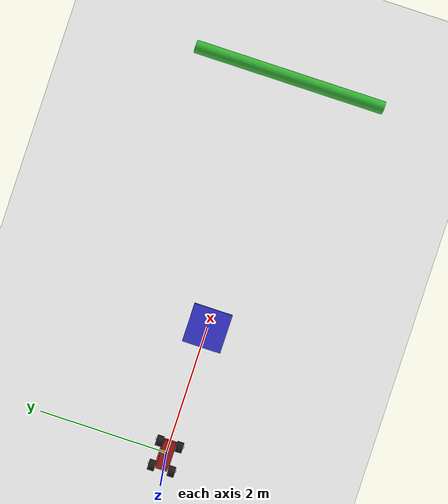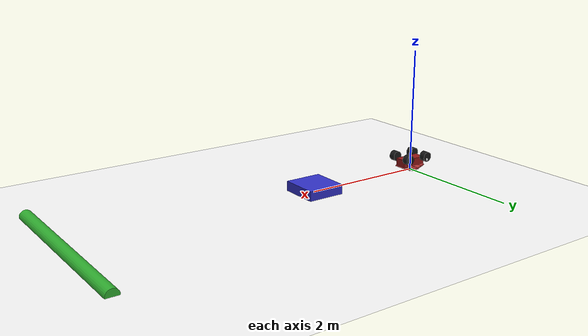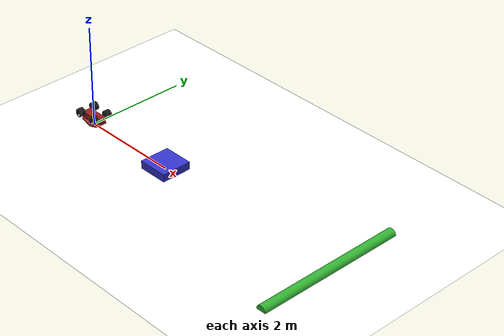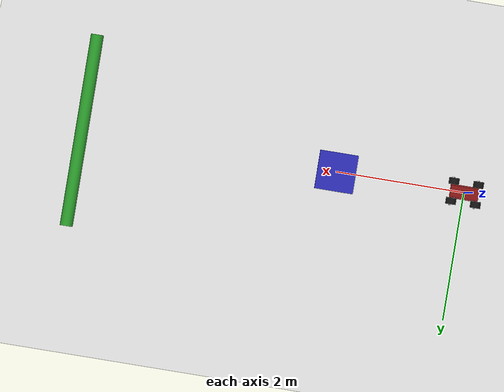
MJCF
<mujoco model="monster_truck_flip">
  <option gravity="0 0 -9.81" integrator="RK4" timestep="0.001"/>
  <compiler angle="radian"/>

  <default>
    <geom contype="1" conaffinity="1"
          friction="1.0 0.005 0.0002"
          solref="0.015 1"
          solimp="0.95 0.99 0.002"
          density="1000"/>
    <joint damping="0.02"/>
  </default>

  <visual>
    <quality shadowsize="2048"/>
    <map znear="0.01" zfar="20"/>
  </visual>

  <worldbody>
    <light name="sun" pos="0 0 10" dir="0 0 -1" diffuse="1 1 1"/>
    <geom name="ground" type="plane" size="100 100 0.1" rgba="1.0 1.0 1.0 1"/>

    <!-- obstacles unchanged -->

    <geom name="obs_box_1" type="box"
    pos="2.0 0.0 0.05"
    size="0.30 0.30 0.1"
    rgba="0.2 0.2 0.8 1"/>

    <geom name="pole_1" type="cylinder"
      pos="6.0 0.0 0.0"
      size="0.10 1.50"
      euler="1.5708 0 0"
      rgba="0.2 0.7 0.2 1"/>

    <body name="chassis" pos="0 0 0.15" quat="0 1 0 0">
      <freejoint/>

      <site name="imu_site" pos="0 0 0" size="0.01" rgba="0 1 0 1"/>

      <!-- Base chassis (smaller, matches wheelbase/track better) -->
      <geom name="chassis_box" type="box" size="0.22 0.09 0.06"
            rgba="0.6 0.1 0.1 1" mass="3.81"/>

      <!-- Slab half-sizes: x=0.04 (length 0.08), y=0.11 (width 0.22), z=0.01 -->
      <geom name="roof_slab_1" type="box" size="0.04 0.11 0.01" pos="-0.18 0 0.090" euler="0 -0.45 0" rgba="0.7 0.2 0.2 1" mass="0.01"/>
      <geom name="roof_slab_2" type="box" size="0.04 0.11 0.01" pos="-0.12 0 0.110" euler="0 -0.30 0" rgba="0.7 0.2 0.2 1" mass="0.01"/>
      <geom name="roof_slab_3" type="box" size="0.04 0.11 0.01" pos="-0.06 0 0.130" euler="0 -0.15 0" rgba="0.7 0.2 0.2 1" mass="0.01"/>
      <geom name="roof_slab_4" type="box" size="0.04 0.11 0.01" pos=" 0.00 0 0.140" euler="0  0.00 0" rgba="0.7 0.2 0.2 1" mass="0.01"/>
      <geom name="roof_slab_5" type="box" size="0.04 0.11 0.01" pos=" 0.06 0 0.130" euler="0  0.15 0" rgba="0.7 0.2 0.2 1" mass="0.01"/>
      <geom name="roof_slab_6" type="box" size="0.04 0.11 0.01" pos=" 0.12 0 0.110" euler="0  0.30 0" rgba="0.7 0.2 0.2 1" mass="0.01"/>
      <geom name="roof_slab_7" type="box" size="0.04 0.11 0.01" pos=" 0.18 0 0.090" euler="0  0.45 0" rgba="0.7 0.2 0.2 1" mass="0.01"/>

      <body name="wheel_fl" pos=" 0.1905  0.155 -0.08">
        <joint name="j_fl" type="hinge" axis="0 1 0" damping="0.002"/>
        <geom name="tire_fl" type="cylinder" size="0.081 0.051" euler="1.57 0 0"
              rgba="0.1 0.1 0.1 1" mass="0.30" friction="1.8 0.005 0.0002"/>
        <geom name="mark_fl" type="sphere" size="0.02" pos="0.01 0.05 0.04"
              rgba="1 1 1 1" contype="0" conaffinity="0" density="0"/>
      </body>

      <body name="wheel_fr" pos=" 0.1905 -0.155 -0.08">
        <joint name="j_fr" type="hinge" axis="0 1 0" damping="0.002"/>
        <geom name="tire_fr" type="cylinder" size="0.081 0.051" euler="1.57 0 0"
              rgba="0.1 0.1 0.1 1" mass="0.30" friction="1.8 0.005 0.0002"/>
        <geom name="mark_fr" type="sphere" size="0.02" pos="0.01 -0.05 0.04"
              rgba="1 1 1 1" contype="0" conaffinity="0" density="0"/>
      </body>

      <body name="wheel_rl" pos="-0.1905  0.155 -0.08">
        <joint name="j_rl" type="hinge" axis="0 1 0" damping="0.002"/>
        <geom name="tire_rl" type="cylinder" size="0.081 0.051" euler="1.57 0 0"
              rgba="0.1 0.1 0.1 1" mass="0.30" friction="1.8 0.005 0.0002"/>
        <geom name="mark_rl" type="sphere" size="0.02" pos="0.01 0.05 0.04"
              rgba="1 1 1 1" contype="0" conaffinity="0" density="0"/>
      </body>

      <body name="wheel_rr" pos="-0.1905 -0.155 -0.08">
        <joint name="j_rr" type="hinge" axis="0 1 0" damping="0.002"/>
        <geom name="tire_rr" type="cylinder" size="0.081 0.051" euler="1.57 0 0"
              rgba="0.1 0.1 0.1 1" mass="0.30" friction="1.8 0.005 0.0002"/>
        <geom name="mark_rr" type="sphere" size="0.02" pos="0.01 -0.05 0.04"
              rgba="1 1 1 1" contype="0" conaffinity="0" density="0"/>
      </body>
    </body>
  </worldbody>

  <tendon>
    <fixed name="drive">
      <joint joint="j_fl" coef="0.25"/>
      <joint joint="j_fr" coef="0.25"/>
      <joint joint="j_rl" coef="0.25"/>
      <joint joint="j_rr" coef="0.25"/>
    </fixed>
  </tendon>

  <actuator>
    <motor name="drive_motor" tendon="drive"
           ctrllimited="true" ctrlrange="-1 1"
           gear="8.0"/>
  </actuator>

  <sensor>
    <accelerometer name="imu_acc"  site="imu_site"/>
    <gyro          name="imu_gyro" site="imu_site"/>
    <velocimeter   name="imu_vel"  site="imu_site"/>
  </sensor>
</mujoco>
